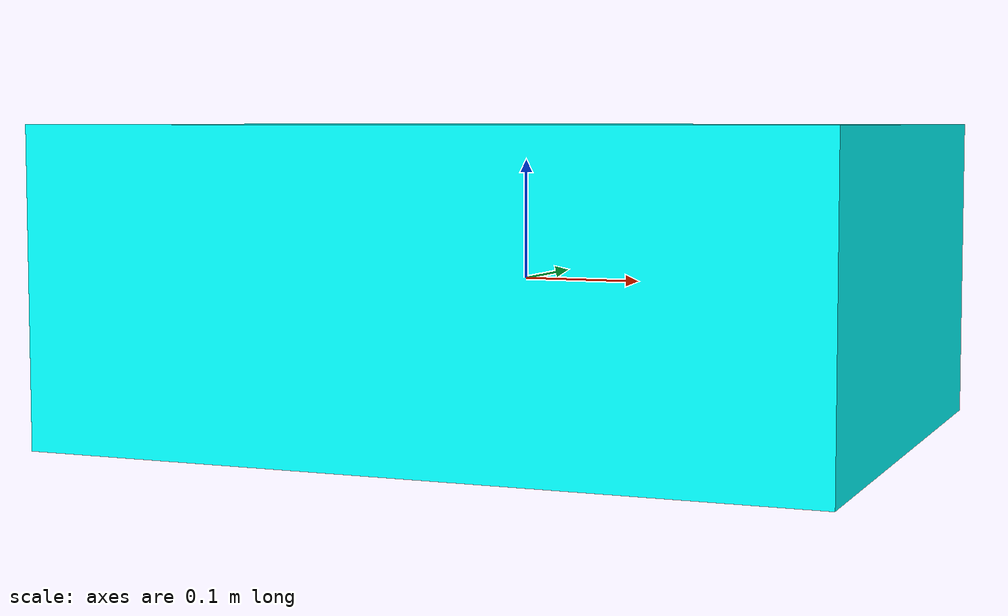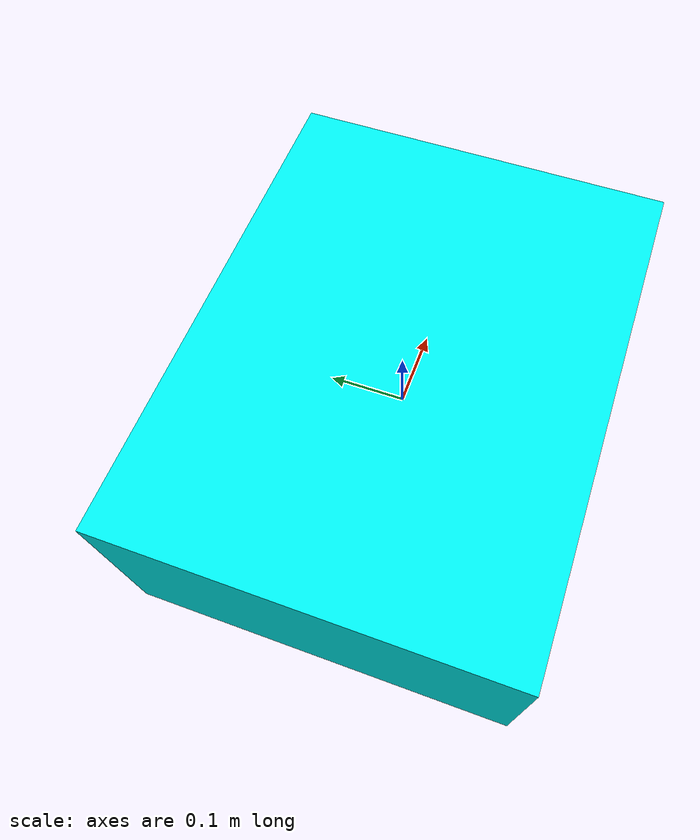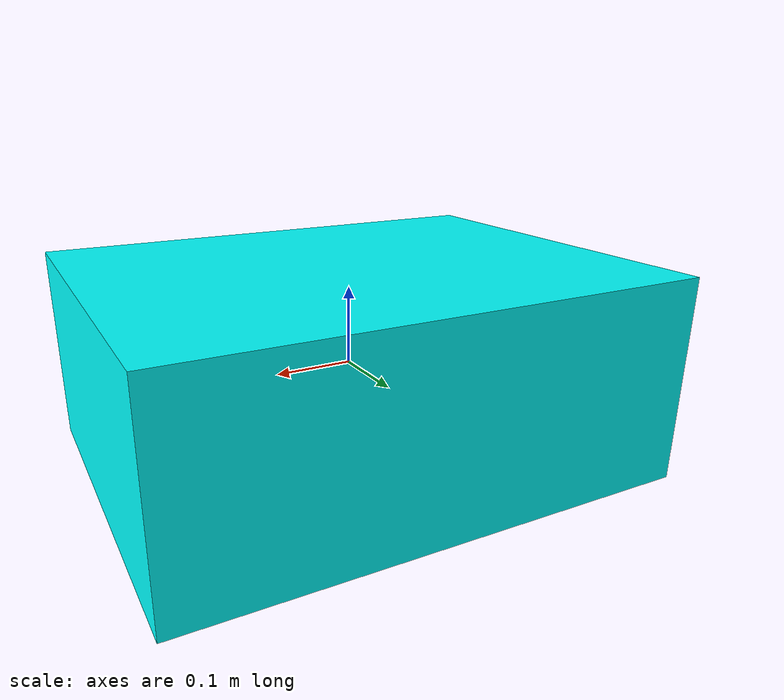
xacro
<?xml version="1.0"?>
<robot xmlns:xacro="http://www.ros.org/wiki/xacro">
    <!-- Define robot constants -->
    <xacro:property name="base_width" value="0.5"/>
    <xacro:property name="base_length" value="0.65"/>
    <xacro:property name="base_height" value="0.26"/>
    <xacro:property name="base_cm" value="0.00083 0.0043 0.03185"/>
    <xacro:property name="base_mass" value="15.0"/>
    <xacro:property name="base_ixx" value="0.21649063225"/>
    <xacro:property name="base_iyy" value="0.27111700496"/>
    <xacro:property name="base_izz" value="0.39345087808"/>
    <xacro:property name="base_ixy" value="-0.39345087808"/>
    <xacro:property name="base_ixz" value="0.00342580824"/>
    <xacro:property name="base_iyz" value="0.00120374007"/>
    <!-- Robot Base -->
    <link name="base_link">
        <visual>
            <geometry>
                <box size="${base_length} ${base_width} ${base_height}"/>
            </geometry>
            <material name="Cyan">
                <color rgba="0 1.0 1.0 1.0"/>
            </material>
        </visual>
        <inertial>
            <origin xyz="0.00083 0.0043 0.03185"/>
            <mass value="15.0"/>
            <inertia ixx="0.21649063225" ixy="0.0" ixz="0.0" iyy="0.0" iyz="0.0" izz="0.0"/>
        </inertial>
    </link>
</robot>
